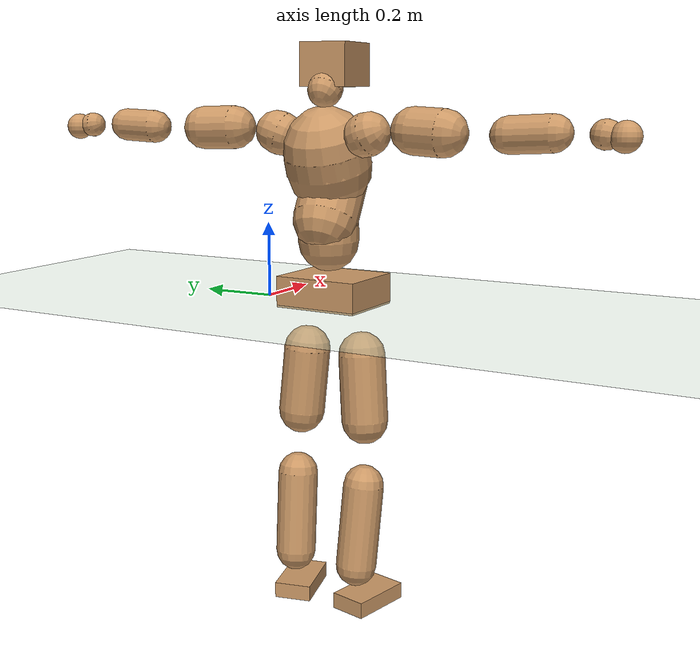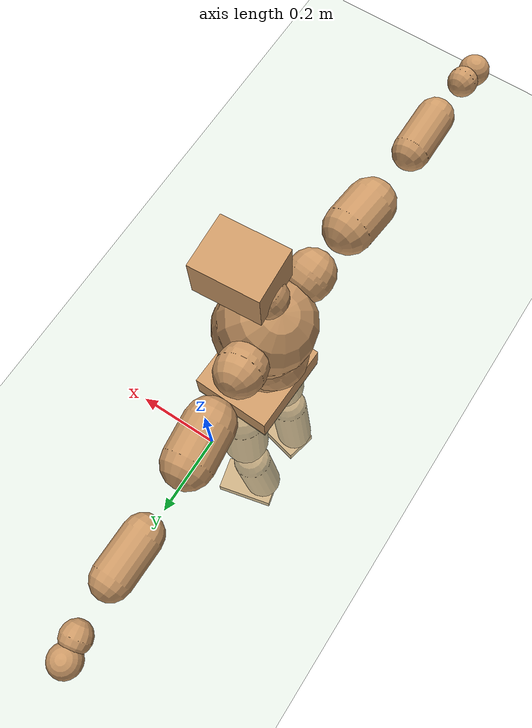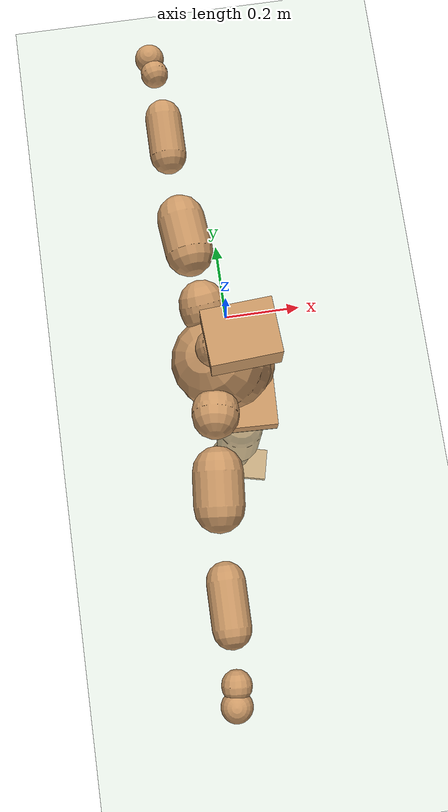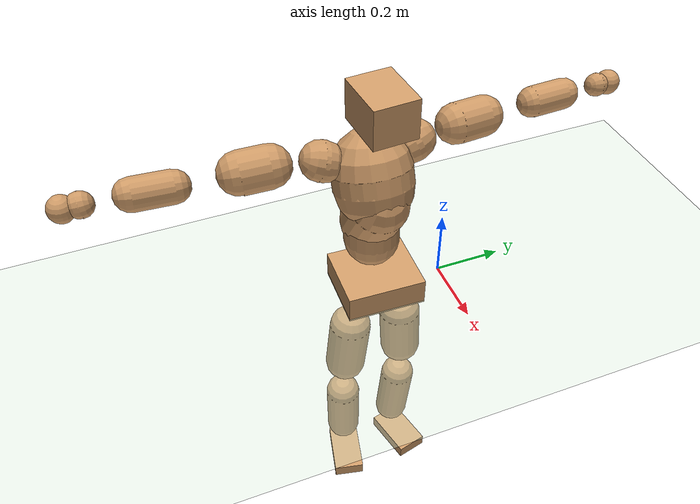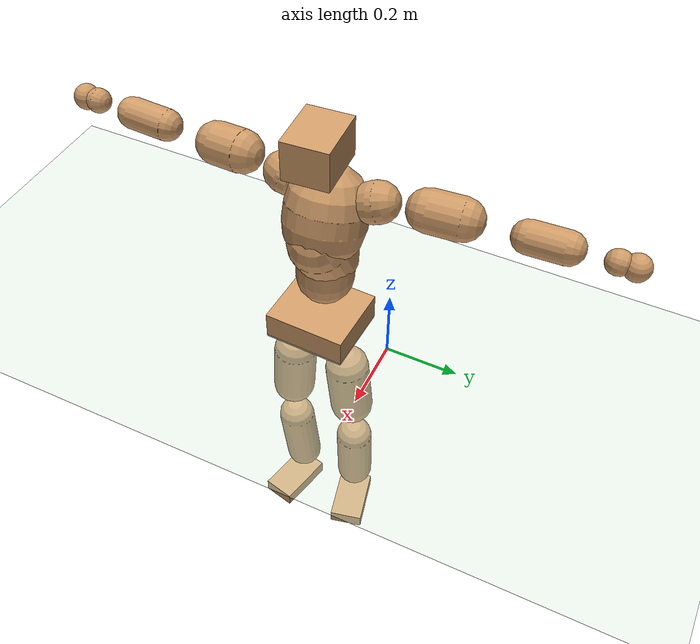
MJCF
<mujoco model="humanoid">
  <compiler coordinate="local" angle="radian"/>
  <default>
    <joint damping="0.0" armature="0.01" stiffness="0.0" limited="true"/>
    <geom conaffinity="1" condim="3" contype="7" margin="0.001" rgba="0.8 0.6 .4 1"/>
  </default>
  <asset>
    <texture type="skybox" builtin="gradient" rgb1=".4 .5 .6" rgb2="0 0 0" width="100" height="100"/>
    <texture builtin="flat" height="1278" mark="cross" markrgb="1 1 1" name="texgeom" random="0.01" rgb1="0.8 0.6 0.4" rgb2="0.8 0.6 0.4" type="cube" width="127"/>
    <texture builtin="checker" height="100" name="texplane" rgb1="0 0 0" rgb2="0.8 0.8 0.8" type="2d" width="100"/>
    <material name="MatPlane" reflectance="0.5" shininess="1" specular="1" texrepeat="60 60" texture="texplane"/>
    <material name="geom" texture="texgeom" texuniform="true"/>
  </asset>
  <worldbody>
    <light cutoff="100" diffuse="1 1 1" dir="-0 0 -1.3" directional="true" exponent="1" pos="0 0 1.3" specular=".1 .1 .1"/>
    <geom conaffinity="1" condim="3" name="floor" pos="0 0 0" rgba="0.8 0.9 0.8 1" size="100 100 .2" type="plane" material="MatPlane"/>
    <body name="Pelvis" pos="0.0015 -0.2014 0.0459">
      <freejoint name="Pelvis"/>
      <geom type="box" contype="1" conaffinity="1" density="5359.375225" pos="-0.0039 0.0001 -0.0125" size="0.101 0.1141 0.0408" quat="0.9998 0.0000 0.0000 -0.0180" name="Pelvis"/>
      <body name="L_Hip" pos="0.0034 0.0756 -0.0881">
        <joint name="L_Hip_x" type="hinge" pos="0 0 0" axis="1 0 0" stiffness="1600" damping="160" armature="0.02" range="-180.0000 180.0000"/>
        <joint name="L_Hip_y" type="hinge" pos="0 0 0" axis="0 1 0" stiffness="1600" damping="160" armature="0.02" range="-180.0000 180.0000"/>
        <joint name="L_Hip_z" type="hinge" pos="0 0 0" axis="0 0 1" stiffness="1600" damping="160" armature="0.02" range="-180.0000 180.0000"/>
        <geom type="capsule" contype="1" conaffinity="1" density="2040.816327" size="0.0624" fromto="-0.0050 0.0066 -0.0920 -0.0142 0.0189 -0.2642" name="L_Hip"/>
        <body name="L_Knee" pos="-0.0192 0.0255 -0.3563">
          <joint name="L_Knee_x" type="hinge" pos="0 0 0" axis="1 0 0" stiffness="1600" damping="160" armature="0.02" range="-180.0000 180.0000"/>
          <joint name="L_Knee_y" type="hinge" pos="0 0 0" axis="0 1 0" stiffness="1600" damping="160" armature="0.02" range="-180.0000 180.0000"/>
          <joint name="L_Knee_z" type="hinge" pos="0 0 0" axis="0 0 1" stiffness="1600" damping="160" armature="0.02" range="-180.0000 180.0000"/>
          <geom type="capsule" contype="1" conaffinity="1" density="1234.567901" size="0.0541" fromto="-0.0095 -0.0024 -0.0836 -0.0345 -0.0089 -0.3034" name="L_Knee"/>
          <body name="L_Ankle" pos="-0.044 -0.0113 -0.387">
            <joint name="L_Ankle_x" type="hinge" pos="0 0 0" axis="1 0 0" stiffness="1600" damping="160" armature="0.02" range="-180.0000 180.0000"/>
            <joint name="L_Ankle_y" type="hinge" pos="0 0 0" axis="0 1 0" stiffness="1600" damping="160" armature="0.02" range="-180.0000 180.0000"/>
            <joint name="L_Ankle_z" type="hinge" pos="0 0 0" axis="0 0 1" stiffness="1600" damping="160" armature="0.02" range="-180.0000 180.0000"/>
            <geom type="box" contype="1" conaffinity="1" density="1000.000018" pos="0.0585 0.0137 -0.0289" size="0.085 0.0498 0.0212" quat="0.9934 0.0000 0.0000 0.1149" name="L_Ankle"/>
            <body name="L_Toe" pos="0.1169 0.0274 -0.0577">
              <joint name="L_Toe_x" type="hinge" pos="0 0 0" axis="1 0 0" stiffness="1000" damping="100" armature="0.02" range="-180.0000 180.0000"/>
              <joint name="L_Toe_y" type="hinge" pos="0 0 0" axis="0 1 0" stiffness="1000" damping="100" armature="0.02" range="-180.0000 180.0000"/>
              <joint name="L_Toe_z" type="hinge" pos="0 0 0" axis="0 0 1" stiffness="1000" damping="100" armature="0.02" range="-180.0000 180.0000"/>
              <geom type="box" contype="1" conaffinity="1" density="8347600.108466" pos="0.0000 0.0000 0.0286" size="0.001 0.0025 0.0011" quat="0.9927 0.0000 0.0000 0.1209" name="L_Toe"/>
            </body>
          </body>
        </body>
      </body>
      <body name="R_Hip" pos="0.0065 -0.0734 -0.0887">
        <joint name="R_Hip_x" type="hinge" pos="0 0 0" axis="1 0 0" stiffness="1600" damping="160" armature="0.02" range="-180.0000 180.0000"/>
        <joint name="R_Hip_y" type="hinge" pos="0 0 0" axis="0 1 0" stiffness="1600" damping="160" armature="0.02" range="-180.0000 180.0000"/>
        <joint name="R_Hip_z" type="hinge" pos="0 0 0" axis="0 0 1" stiffness="1600" damping="160" armature="0.02" range="-180.0000 180.0000"/>
        <geom type="capsule" contype="1" conaffinity="1" density="2040.816327" size="0.0617" fromto="-0.0049 -0.0081 -0.0912 -0.0144 -0.0237 -0.2679" name="R_Hip"/>
        <body name="R_Knee" pos="-0.0193 -0.0318 -0.3591">
          <joint name="R_Knee_x" type="hinge" pos="0 0 0" axis="1 0 0" stiffness="1600" damping="160" armature="0.02" range="-180.0000 180.0000"/>
          <joint name="R_Knee_y" type="hinge" pos="0 0 0" axis="0 1 0" stiffness="1600" damping="160" armature="0.02" range="-180.0000 180.0000"/>
          <joint name="R_Knee_z" type="hinge" pos="0 0 0" axis="0 0 1" stiffness="1600" damping="160" armature="0.02" range="-180.0000 180.0000"/>
          <geom type="capsule" contype="1" conaffinity="1" density="1234.567901" size="0.0544" fromto="-0.0095 0.0028 -0.0838 -0.0348 0.0103 -0.3066" name="R_Knee"/>
          <body name="R_Ankle" pos="-0.0443 0.0132 -0.3904">
            <joint name="R_Ankle_x" type="hinge" pos="0 0 0" axis="1 0 0" stiffness="1600" damping="160" armature="0.02" range="-180.0000 180.0000"/>
            <joint name="R_Ankle_y" type="hinge" pos="0 0 0" axis="0 1 0" stiffness="1600" damping="160" armature="0.02" range="-180.0000 180.0000"/>
            <joint name="R_Ankle_z" type="hinge" pos="0 0 0" axis="0 0 1" stiffness="1600" damping="160" armature="0.02" range="-180.0000 180.0000"/>
            <geom type="box" contype="1" conaffinity="1" density="999.999986" pos="0.0608 -0.0139 -0.0235" size="0.0865 0.049 0.0218" quat="0.9937 0.0000 0.0000 -0.1121" name="R_Ankle"/>
            <body name="R_Toe" pos="0.1216 -0.0278 -0.047">
              <joint name="R_Toe_x" type="hinge" pos="0 0 0" axis="1 0 0" stiffness="1000" damping="100" armature="0.02" range="-180.0000 180.0000"/>
              <joint name="R_Toe_y" type="hinge" pos="0 0 0" axis="0 1 0" stiffness="1000" damping="100" armature="0.02" range="-180.0000 180.0000"/>
              <joint name="R_Toe_z" type="hinge" pos="0 0 0" axis="0 0 1" stiffness="1000" damping="100" armature="0.02" range="-180.0000 180.0000"/>
              <geom type="box" contype="1" conaffinity="1" density="7855703.331179" pos="0.0000 0.0000 0.0246" size="0.001 0.0025 0.0011" quat="0.9947 0.0000 0.0000 -0.1026" name="R_Toe"/>
            </body>
          </body>
        </body>
      </body>
      <body name="Torso" pos="-0.0336 -0.0013 0.1021">
        <joint name="Torso_x" type="hinge" pos="0 0 0" axis="1 0 0" stiffness="2000" damping="200" armature="0.02" range="-180.0000 180.0000"/>
        <joint name="Torso_y" type="hinge" pos="0 0 0" axis="0 1 0" stiffness="2000" damping="200" armature="0.02" range="-180.0000 180.0000"/>
        <joint name="Torso_z" type="hinge" pos="0 0 0" axis="0 0 1" stiffness="2000" damping="200" armature="0.02" range="-180.0000 180.0000"/>
        <geom type="capsule" contype="1" conaffinity="1" density="2040.816327" size="0.0794" fromto="-0.0031 0.0010 0.0794 -0.0008 0.0003 0.0199" name="Torso"/>
        <body name="Spine" pos="-0.0038 0.0013 0.0992">
          <joint name="Spine_x" type="hinge" pos="0 0 0" axis="1 0 0" stiffness="2000" damping="200" armature="0.02" range="-180.0000 180.0000"/>
          <joint name="Spine_y" type="hinge" pos="0 0 0" axis="0 1 0" stiffness="2000" damping="200" armature="0.02" range="-180.0000 180.0000"/>
          <joint name="Spine_z" type="hinge" pos="0 0 0" axis="0 0 1" stiffness="2000" damping="200" armature="0.02" range="-180.0000 180.0000"/>
          <geom type="capsule" contype="1" conaffinity="1" density="2040.816327" size="0.0843" fromto="0.0443 0.0027 0.0717 -0.0147 -0.0009 -0.0238" name="Spine"/>
          <body name="Chest" pos="0.0296 0.0018 0.0478">
            <joint name="Chest_x" type="hinge" pos="0 0 0" axis="1 0 0" stiffness="2000" damping="200" armature="0.02" range="-180.0000 180.0000"/>
            <joint name="Chest_y" type="hinge" pos="0 0 0" axis="0 1 0" stiffness="2000" damping="200" armature="0.02" range="-180.0000 180.0000"/>
            <joint name="Chest_z" type="hinge" pos="0 0 0" axis="0 0 1" stiffness="2000" damping="200" armature="0.02" range="-180.0000 180.0000"/>
            <geom type="capsule" contype="1" conaffinity="1" density="2040.816327" size="0.1107" fromto="-0.0373 -0.0007 0.1042 -0.0208 -0.0004 0.0580" name="Chest"/>
            <body name="Neck" pos="-0.0665 -0.0007 0.2272">
              <joint name="Neck_x" type="hinge" pos="0 0 0" axis="1 0 0" stiffness="1000" damping="100" armature="0.02" range="-180.0000 180.0000"/>
              <joint name="Neck_y" type="hinge" pos="0 0 0" axis="0 1 0" stiffness="1000" damping="100" armature="0.02" range="-180.0000 180.0000"/>
              <joint name="Neck_z" type="hinge" pos="0 0 0" axis="0 0 1" stiffness="1000" damping="100" armature="0.02" range="-180.0000 180.0000"/>
              <geom type="capsule" contype="1" conaffinity="1" density="1000" size="0.0443" fromto="0.0299 0.0009 0.0326 0.0231 0.0007 0.0251" name="Neck"/>
              <body name="Head" pos="0.053 0.0016 0.0578">
                <joint name="Head_x" type="hinge" pos="0 0 0" axis="1 0 0" stiffness="1000" damping="100" armature="0.02" range="-180.0000 180.0000"/>
                <joint name="Head_y" type="hinge" pos="0 0 0" axis="0 1 0" stiffness="1000" damping="100" armature="0.02" range="-180.0000 180.0000"/>
                <joint name="Head_z" type="hinge" pos="0 0 0" axis="0 0 1" stiffness="1000" damping="100" armature="0.02" range="-180.0000 180.0000"/>
                <geom type="box" contype="1" conaffinity="1" density="2249.999969" pos="0.0275 0.0018 0.0299" size="0.078 0.0617 0.0545" quat="0.9995 0.0000 0.0000 0.0329" name="Head"/>
              </body>
            </body>
            <body name="L_Thorax" pos="-0.0518 0.0796 0.1302">
              <joint name="L_Thorax_x" type="hinge" pos="0 0 0" axis="1 0 0" stiffness="1000" damping="100" armature="0.02" range="-180.0000 180.0000"/>
              <joint name="L_Thorax_y" type="hinge" pos="0 0 0" axis="0 1 0" stiffness="1000" damping="100" armature="0.02" range="-180.0000 180.0000"/>
              <joint name="L_Thorax_z" type="hinge" pos="0 0 0" axis="0 0 1" stiffness="1000" damping="100" armature="0.02" range="-180.0000 180.0000"/>
              <geom type="capsule" contype="1" conaffinity="1" density="1000" size="0.055" fromto="-0.0056 0.0518 0.0175 -0.0039 0.0367 0.0124" name="L_Thorax"/>
              <body name="L_Shoulder" pos="-0.0095 0.0885 0.0299">
                <joint name="L_Shoulder_x" type="hinge" pos="0 0 0" axis="1 0 0" stiffness="1000" damping="100" armature="0.02" range="-720.0000 720.0000"/>
                <joint name="L_Shoulder_y" type="hinge" pos="0 0 0" axis="0 1 0" stiffness="1000" damping="100" armature="0.02" range="-720.0000 720.0000"/>
                <joint name="L_Shoulder_z" type="hinge" pos="0 0 0" axis="0 0 1" stiffness="1000" damping="100" armature="0.02" range="-720.0000 720.0000"/>
                <geom type="capsule" contype="1" conaffinity="1" density="1000" size="0.0559" fromto="-0.0091 0.0854 -0.0022 -0.0182 0.1716 -0.0045" name="L_Shoulder"/>
                <body name="L_Elbow" pos="-0.0272 0.257 -0.0067">
                  <joint name="L_Elbow_x" type="hinge" pos="0 0 0" axis="1 0 0" stiffness="1000" damping="100" armature="0.02" range="-720.0000 720.0000"/>
                  <joint name="L_Elbow_y" type="hinge" pos="0 0 0" axis="0 1 0" stiffness="1000" damping="100" armature="0.02" range="-720.0000 720.0000"/>
                  <joint name="L_Elbow_z" type="hinge" pos="0 0 0" axis="0 0 1" stiffness="1000" damping="100" armature="0.02" range="-720.0000 720.0000"/>
                  <geom type="capsule" contype="1" conaffinity="1" density="1000" size="0.0428" fromto="0.0002 0.0728 0.0031 0.0004 0.1687 0.0072" name="L_Elbow"/>
                  <body name="L_Wrist" pos="0.0006 0.2414 0.0103">
                    <joint name="L_Wrist_x" type="hinge" pos="0 0 0" axis="1 0 0" stiffness="600" damping="60" armature="0.02" range="-180.0000 180.0000"/>
                    <joint name="L_Wrist_y" type="hinge" pos="0 0 0" axis="0 1 0" stiffness="600" damping="60" armature="0.02" range="-180.0000 180.0000"/>
                    <joint name="L_Wrist_z" type="hinge" pos="0 0 0" axis="0 0 1" stiffness="600" damping="60" armature="0.02" range="-180.0000 180.0000"/>
                    <geom type="capsule" contype="1" conaffinity="1" density="1000" size="0.0325" fromto="-0.0068 0.0417 -0.0048 -0.0071 0.0436 -0.0051" name="L_Wrist"/>
                    <body name="L_Hand" pos="-0.014 0.0853 -0.0099">
                      <joint name="L_Hand_x" type="hinge" pos="0 0 0" axis="1 0 0" stiffness="600" damping="60" armature="0.02" range="-180.0000 180.0000"/>
                      <joint name="L_Hand_y" type="hinge" pos="0 0 0" axis="0 1 0" stiffness="600" damping="60" armature="0.02" range="-180.0000 180.0000"/>
                      <joint name="L_Hand_z" type="hinge" pos="0 0 0" axis="0 0 1" stiffness="600" damping="60" armature="0.02" range="-180.0000 180.0000"/>
                      <geom type="sphere" contype="1" conaffinity="1" density="1000" size="0.0344" pos="0.0000 0.0000 0.0000" name="L_Hand"/>
                    </body>
                  </body>
                </body>
              </body>
            </body>
            <body name="R_Thorax" pos="-0.0559 -0.0822 0.1291">
              <joint name="R_Thorax_x" type="hinge" pos="0 0 0" axis="1 0 0" stiffness="1000" damping="100" armature="0.02" range="-180.0000 180.0000"/>
              <joint name="R_Thorax_y" type="hinge" pos="0 0 0" axis="0 1 0" stiffness="1000" damping="100" armature="0.02" range="-180.0000 180.0000"/>
              <joint name="R_Thorax_z" type="hinge" pos="0 0 0" axis="0 0 1" stiffness="1000" damping="100" armature="0.02" range="-180.0000 180.0000"/>
              <geom type="capsule" contype="1" conaffinity="1" density="1000" size="0.0547" fromto="-0.0062 -0.0512 0.0182 -0.0048 -0.0399 0.0142" name="R_Thorax"/>
              <body name="R_Shoulder" pos="-0.011 -0.0912 0.0324">
                <joint name="R_Shoulder_x" type="hinge" pos="0 0 0" axis="1 0 0" stiffness="1000" damping="100" armature="0.02" range="-720.0000 720.0000"/>
                <joint name="R_Shoulder_y" type="hinge" pos="0 0 0" axis="0 1 0" stiffness="1000" damping="100" armature="0.02" range="-720.0000 720.0000"/>
                <joint name="R_Shoulder_z" type="hinge" pos="0 0 0" axis="0 0 1" stiffness="1000" damping="100" armature="0.02" range="-720.0000 720.0000"/>
                <geom type="capsule" contype="1" conaffinity="1" density="1000" size="0.0581" fromto="-0.0078 -0.0877 -0.0045 -0.0149 -0.1667 -0.0085" name="R_Shoulder"/>
                <body name="R_Elbow" pos="-0.0227 -0.2544 -0.013">
                  <joint name="R_Elbow_x" type="hinge" pos="0 0 0" axis="1 0 0" stiffness="1000" damping="100" armature="0.02" range="-720.0000 720.0000"/>
                  <joint name="R_Elbow_y" type="hinge" pos="0 0 0" axis="0 1 0" stiffness="1000" damping="100" armature="0.02" range="-720.0000 720.0000"/>
                  <joint name="R_Elbow_z" type="hinge" pos="0 0 0" axis="0 0 1" stiffness="1000" damping="100" armature="0.02" range="-720.0000 720.0000"/>
                  <geom type="capsule" contype="1" conaffinity="1" density="1000" size="0.0437" fromto="-0.0004 -0.0736 0.0039 -0.0009 -0.1781 0.0094" name="R_Elbow"/>
                  <body name="R_Wrist" pos="-0.0013 -0.2517 0.0133">
                    <joint name="R_Wrist_x" type="hinge" pos="0 0 0" axis="1 0 0" stiffness="600" damping="60" armature="0.02" range="-180.0000 180.0000"/>
                    <joint name="R_Wrist_y" type="hinge" pos="0 0 0" axis="0 1 0" stiffness="600" damping="60" armature="0.02" range="-180.0000 180.0000"/>
                    <joint name="R_Wrist_z" type="hinge" pos="0 0 0" axis="0 0 1" stiffness="600" damping="60" armature="0.02" range="-180.0000 180.0000"/>
                    <geom type="capsule" contype="1" conaffinity="1" density="1000" size="0.0341" fromto="-0.0057 -0.0431 -0.0039 -0.0059 -0.0451 -0.0041" name="R_Wrist"/>
                    <body name="R_Hand" pos="-0.0116 -0.0881 -0.008">
                      <joint name="R_Hand_x" type="hinge" pos="0 0 0" axis="1 0 0" stiffness="600" damping="60" armature="0.02" range="-180.0000 180.0000"/>
                      <joint name="R_Hand_y" type="hinge" pos="0 0 0" axis="0 1 0" stiffness="600" damping="60" armature="0.02" range="-180.0000 180.0000"/>
                      <joint name="R_Hand_z" type="hinge" pos="0 0 0" axis="0 0 1" stiffness="600" damping="60" armature="0.02" range="-180.0000 180.0000"/>
                      <geom type="sphere" contype="1" conaffinity="1" density="1000" size="0.0355" pos="0.0000 0.0000 0.0000" name="R_Hand"/>
                    </body>
                  </body>
                </body>
              </body>
            </body>
          </body>
        </body>
      </body>
    </body>
  </worldbody>
  <actuator>
    <motor name="L_Hip_x" joint="L_Hip_x" gear="500"/>
    <motor name="L_Hip_y" joint="L_Hip_y" gear="500"/>
    <motor name="L_Hip_z" joint="L_Hip_z" gear="500"/>
    <motor name="L_Knee_x" joint="L_Knee_x" gear="500"/>
    <motor name="L_Knee_y" joint="L_Knee_y" gear="500"/>
    <motor name="L_Knee_z" joint="L_Knee_z" gear="500"/>
    <motor name="L_Ankle_x" joint="L_Ankle_x" gear="500"/>
    <motor name="L_Ankle_y" joint="L_Ankle_y" gear="500"/>
    <motor name="L_Ankle_z" joint="L_Ankle_z" gear="500"/>
    <motor name="L_Toe_x" joint="L_Toe_x" gear="500"/>
    <motor name="L_Toe_y" joint="L_Toe_y" gear="500"/>
    <motor name="L_Toe_z" joint="L_Toe_z" gear="500"/>
    <motor name="R_Hip_x" joint="R_Hip_x" gear="500"/>
    <motor name="R_Hip_y" joint="R_Hip_y" gear="500"/>
    <motor name="R_Hip_z" joint="R_Hip_z" gear="500"/>
    <motor name="R_Knee_x" joint="R_Knee_x" gear="500"/>
    <motor name="R_Knee_y" joint="R_Knee_y" gear="500"/>
    <motor name="R_Knee_z" joint="R_Knee_z" gear="500"/>
    <motor name="R_Ankle_x" joint="R_Ankle_x" gear="500"/>
    <motor name="R_Ankle_y" joint="R_Ankle_y" gear="500"/>
    <motor name="R_Ankle_z" joint="R_Ankle_z" gear="500"/>
    <motor name="R_Toe_x" joint="R_Toe_x" gear="500"/>
    <motor name="R_Toe_y" joint="R_Toe_y" gear="500"/>
    <motor name="R_Toe_z" joint="R_Toe_z" gear="500"/>
    <motor name="Torso_x" joint="Torso_x" gear="500"/>
    <motor name="Torso_y" joint="Torso_y" gear="500"/>
    <motor name="Torso_z" joint="Torso_z" gear="500"/>
    <motor name="Spine_x" joint="Spine_x" gear="500"/>
    <motor name="Spine_y" joint="Spine_y" gear="500"/>
    <motor name="Spine_z" joint="Spine_z" gear="500"/>
    <motor name="Chest_x" joint="Chest_x" gear="500"/>
    <motor name="Chest_y" joint="Chest_y" gear="500"/>
    <motor name="Chest_z" joint="Chest_z" gear="500"/>
    <motor name="Neck_x" joint="Neck_x" gear="500"/>
    <motor name="Neck_y" joint="Neck_y" gear="500"/>
    <motor name="Neck_z" joint="Neck_z" gear="500"/>
    <motor name="Head_x" joint="Head_x" gear="500"/>
    <motor name="Head_y" joint="Head_y" gear="500"/>
    <motor name="Head_z" joint="Head_z" gear="500"/>
    <motor name="L_Thorax_x" joint="L_Thorax_x" gear="500"/>
    <motor name="L_Thorax_y" joint="L_Thorax_y" gear="500"/>
    <motor name="L_Thorax_z" joint="L_Thorax_z" gear="500"/>
    <motor name="L_Shoulder_x" joint="L_Shoulder_x" gear="500"/>
    <motor name="L_Shoulder_y" joint="L_Shoulder_y" gear="500"/>
    <motor name="L_Shoulder_z" joint="L_Shoulder_z" gear="500"/>
    <motor name="L_Elbow_x" joint="L_Elbow_x" gear="500"/>
    <motor name="L_Elbow_y" joint="L_Elbow_y" gear="500"/>
    <motor name="L_Elbow_z" joint="L_Elbow_z" gear="500"/>
    <motor name="L_Wrist_x" joint="L_Wrist_x" gear="500"/>
    <motor name="L_Wrist_y" joint="L_Wrist_y" gear="500"/>
    <motor name="L_Wrist_z" joint="L_Wrist_z" gear="500"/>
    <motor name="L_Hand_x" joint="L_Hand_x" gear="500"/>
    <motor name="L_Hand_y" joint="L_Hand_y" gear="500"/>
    <motor name="L_Hand_z" joint="L_Hand_z" gear="500"/>
    <motor name="R_Thorax_x" joint="R_Thorax_x" gear="500"/>
    <motor name="R_Thorax_y" joint="R_Thorax_y" gear="500"/>
    <motor name="R_Thorax_z" joint="R_Thorax_z" gear="500"/>
    <motor name="R_Shoulder_x" joint="R_Shoulder_x" gear="500"/>
    <motor name="R_Shoulder_y" joint="R_Shoulder_y" gear="500"/>
    <motor name="R_Shoulder_z" joint="R_Shoulder_z" gear="500"/>
    <motor name="R_Elbow_x" joint="R_Elbow_x" gear="500"/>
    <motor name="R_Elbow_y" joint="R_Elbow_y" gear="500"/>
    <motor name="R_Elbow_z" joint="R_Elbow_z" gear="500"/>
    <motor name="R_Wrist_x" joint="R_Wrist_x" gear="500"/>
    <motor name="R_Wrist_y" joint="R_Wrist_y" gear="500"/>
    <motor name="R_Wrist_z" joint="R_Wrist_z" gear="500"/>
    <motor name="R_Hand_x" joint="R_Hand_x" gear="500"/>
    <motor name="R_Hand_y" joint="R_Hand_y" gear="500"/>
    <motor name="R_Hand_z" joint="R_Hand_z" gear="500"/>
  </actuator>
  <contact>
    <exclude body1="Torso" body2="Chest"/>
    <exclude body1="Head" body2="Chest"/>
    <exclude body1="R_Knee" body2="R_Toe"/>
    <exclude body1="R_Knee" body2="L_Ankle"/>
    <exclude body1="R_Knee" body2="L_Toe"/>
    <exclude body1="L_Knee" body2="L_Toe"/>
    <exclude body1="L_Knee" body2="R_Ankle"/>
    <exclude body1="L_Knee" body2="R_Toe"/>
    <exclude body1="L_Shoulder" body2="Chest"/>
    <exclude body1="R_Shoulder" body2="Chest"/>
  </contact>
  <sensor/>
  <size njmax="700" nconmax="700"/>
</mujoco>
